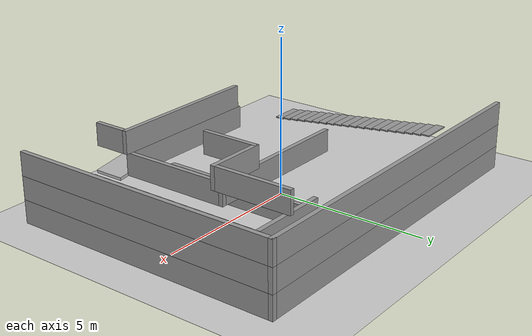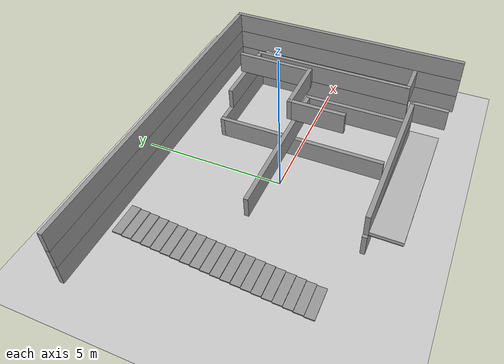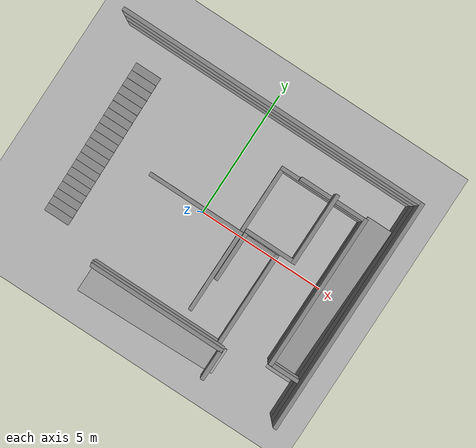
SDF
<sdf version="1.7">
 <world name="default">
  <model name="ground_plane">
   <static>1</static>
   <link name="link">
    <collision name="collision">
     <geometry><plane><normal>0 0 1</normal><size>100 100</size></plane></geometry>
     <surface>
      <contact><collide_bitmask>65535</collide_bitmask></contact>
      <friction><ode><mu>100</mu><mu2>50</mu2></ode></friction>
     </surface>
    </collision>
    <visual name="visual">
     <cast_shadows>0</cast_shadows>
     <geometry><plane><normal>0 0 1</normal><size>100 100</size></plane></geometry>
     <material>
      <script><uri>file://media/materials/scripts/gazebo.material</uri><name>Gazebo/Grey</name></script>
     </material>
    </visual>
   </link>
  </model>
  <model name="building2">
   <pose>0.104983 -0.148677 0 0 -0 0</pose>
   <link name="Stairs_5">
    <visual name="Stairs_5_Visual_0">
     <pose>-4.26414 -2.64856 0.76875 0 -0 -3.14159</pose>
     <geometry><box><size>1 0.3 0.0375</size></box></geometry>
     <material>
      <script><uri>file://media/materials/scripts/gazebo.material</uri><name>Gazebo/Grey</name></script>
      <ambient>1 1 1 1</ambient>
     </material>
     <meta><layer>1</layer></meta>
    </visual>
    <collision name="Stairs_5_Collision_0">
     <geometry><box><size>1 0.3 0.0375</size></box></geometry>
     <pose>-4.26414 -2.64856 0.76875 0 -0 -3.14159</pose>
    </collision>
    <visual name="Stairs_5_Visual_1">
     <pose>-4.26414 -2.34856 0.80625 0 -0 -3.14159</pose>
     <geometry><box><size>1 0.3 0.0375</size></box></geometry>
     <material>
      <script><uri>file://media/materials/scripts/gazebo.material</uri><name>Gazebo/Grey</name></script>
      <ambient>1 1 1 1</ambient>
     </material>
     <meta><layer>1</layer></meta>
    </visual>
    <collision name="Stairs_5_Collision_1">
     <geometry><box><size>1 0.3 0.0375</size></box></geometry>
     <pose>-4.26414 -2.34856 0.80625 0 -0 -3.14159</pose>
    </collision>
    <visual name="Stairs_5_Visual_2">
     <pose>-4.26414 -2.04856 0.84375 0 -0 -3.14159</pose>
     <geometry><box><size>1 0.3 0.0375</size></box></geometry>
     <material>
      <script><uri>file://media/materials/scripts/gazebo.material</uri><name>Gazebo/Grey</name></script>
      <ambient>1 1 1 1</ambient>
     </material>
     <meta><layer>1</layer></meta>
    </visual>
    <collision name="Stairs_5_Collision_2">
     <geometry><box><size>1 0.3 0.0375</size></box></geometry>
     <pose>-4.26414 -2.04856 0.84375 0 -0 -3.14159</pose>
    </collision>
    <visual name="Stairs_5_Visual_3">
     <pose>-4.26414 -1.74856 0.88125 0 -0 -3.14159</pose>
     <geometry><box><size>1 0.3 0.0375</size></box></geometry>
     <material>
      <script><uri>file://media/materials/scripts/gazebo.material</uri><name>Gazebo/Grey</name></script>
      <ambient>1 1 1 1</ambient>
     </material>
     <meta><layer>1</layer></meta>
    </visual>
    <collision name="Stairs_5_Collision_3">
     <geometry><box><size>1 0.3 0.0375</size></box></geometry>
     <pose>-4.26414 -1.74856 0.88125 0 -0 -3.14159</pose>
    </collision>
    <visual name="Stairs_5_Visual_4">
     <pose>-4.26414 -1.44856 0.91875 0 -0 -3.14159</pose>
     <geometry><box><size>1 0.3 0.0375</size></box></geometry>
     <material>
      <script><uri>file://media/materials/scripts/gazebo.material</uri><name>Gazebo/Grey</name></script>
      <ambient>1 1 1 1</ambient>
     </material>
     <meta><layer>1</layer></meta>
    </visual>
    <collision name="Stairs_5_Collision_4">
     <geometry><box><size>1 0.3 0.0375</size></box></geometry>
     <pose>-4.26414 -1.44856 0.91875 0 -0 -3.14159</pose>
    </collision>
    <visual name="Stairs_5_Visual_5">
     <pose>-4.26414 -1.14856 0.95625 0 -0 -3.14159</pose>
     <geometry><box><size>1 0.3 0.0375</size></box></geometry>
     <material>
      <script><uri>file://media/materials/scripts/gazebo.material</uri><name>Gazebo/Grey</name></script>
      <ambient>1 1 1 1</ambient>
     </material>
     <meta><layer>1</layer></meta>
    </visual>
    <collision name="Stairs_5_Collision_5">
     <geometry><box><size>1 0.3 0.0375</size></box></geometry>
     <pose>-4.26414 -1.14856 0.95625 0 -0 -3.14159</pose>
    </collision>
    <visual name="Stairs_5_Visual_6">
     <pose>-4.26414 -0.84856 0.99375 0 -0 -3.14159</pose>
     <geometry><box><size>1 0.3 0.0375</size></box></geometry>
     <material>
      <script><uri>file://media/materials/scripts/gazebo.material</uri><name>Gazebo/Grey</name></script>
      <ambient>1 1 1 1</ambient>
     </material>
     <meta><layer>1</layer></meta>
    </visual>
    <collision name="Stairs_5_Collision_6">
     <geometry><box><size>1 0.3 0.0375</size></box></geometry>
     <pose>-4.26414 -0.84856 0.99375 0 -0 -3.14159</pose>
    </collision>
    <visual name="Stairs_5_Visual_7">
     <pose>-4.26414 -0.548561 1.03125 0 -0 -3.14159</pose>
     <geometry><box><size>1 0.3 0.0375</size></box></geometry>
     <material>
      <script><uri>file://media/materials/scripts/gazebo.material</uri><name>Gazebo/Grey</name></script>
      <ambient>1 1 1 1</ambient>
     </material>
     <meta><layer>1</layer></meta>
    </visual>
    <collision name="Stairs_5_Collision_7">
     <geometry><box><size>1 0.3 0.0375</size></box></geometry>
     <pose>-4.26414 -0.548561 1.03125 0 -0 -3.14159</pose>
    </collision>
    <visual name="Stairs_5_Visual_8">
     <pose>-4.26414 -0.24856 1.06875 0 -0 -3.14159</pose>
     <geometry><box><size>1 0.3 0.0375</size></box></geometry>
     <material>
      <script><uri>file://media/materials/scripts/gazebo.material</uri><name>Gazebo/Grey</name></script>
      <ambient>1 1 1 1</ambient>
     </material>
     <meta><layer>1</layer></meta>
    </visual>
    <collision name="Stairs_5_Collision_8">
     <geometry><box><size>1 0.3 0.0375</size></box></geometry>
     <pose>-4.26414 -0.24856 1.06875 0 -0 -3.14159</pose>
    </collision>
    <visual name="Stairs_5_Visual_9">
     <pose>-4.26414 0.051439 1.10625 0 -0 -3.14159</pose>
     <geometry><box><size>1 0.3 0.0375</size></box></geometry>
     <material>
      <script><uri>file://media/materials/scripts/gazebo.material</uri><name>Gazebo/Grey</name></script>
      <ambient>1 1 1 1</ambient>
     </material>
     <meta><layer>1</layer></meta>
    </visual>
    <collision name="Stairs_5_Collision_9">
     <geometry><box><size>1 0.3 0.0375</size></box></geometry>
     <pose>-4.26414 0.051439 1.10625 0 -0 -3.14159</pose>
    </collision>
    <visual name="Stairs_5_Visual_10">
     <pose>-4.26414 0.351439 1.14375 0 -0 -3.14159</pose>
     <geometry><box><size>1 0.3 0.0375</size></box></geometry>
     <material>
      <script><uri>file://media/materials/scripts/gazebo.material</uri><name>Gazebo/Grey</name></script>
      <ambient>1 1 1 1</ambient>
     </material>
     <meta><layer>1</layer></meta>
    </visual>
    <collision name="Stairs_5_Collision_10">
     <geometry><box><size>1 0.3 0.0375</size></box></geometry>
     <pose>-4.26414 0.351439 1.14375 0 -0 -3.14159</pose>
    </collision>
    <visual name="Stairs_5_Visual_11">
     <pose>-4.26414 0.651439 1.18125 0 -0 -3.14159</pose>
     <geometry><box><size>1 0.3 0.0375</size></box></geometry>
     <material>
      <script><uri>file://media/materials/scripts/gazebo.material</uri><name>Gazebo/Grey</name></script>
      <ambient>1 1 1 1</ambient>
     </material>
     <meta><layer>1</layer></meta>
    </visual>
    <collision name="Stairs_5_Collision_11">
     <geometry><box><size>1 0.3 0.0375</size></box></geometry>
     <pose>-4.26414 0.651439 1.18125 0 -0 -3.14159</pose>
    </collision>
    <visual name="Stairs_5_Visual_12">
     <pose>-4.26414 0.951439 1.21875 0 -0 -3.14159</pose>
     <geometry><box><size>1 0.3 0.0375</size></box></geometry>
     <material>
      <script><uri>file://media/materials/scripts/gazebo.material</uri><name>Gazebo/Grey</name></script>
      <ambient>1 1 1 1</ambient>
     </material>
     <meta><layer>1</layer></meta>
    </visual>
    <collision name="Stairs_5_Collision_12">
     <geometry><box><size>1 0.3 0.0375</size></box></geometry>
     <pose>-4.26414 0.951439 1.21875 0 -0 -3.14159</pose>
    </collision>
    <visual name="Stairs_5_Visual_13">
     <pose>-4.26414 1.25144 1.25625 0 -0 -3.14159</pose>
     <geometry><box><size>1 0.3 0.0375</size></box></geometry>
     <material>
      <script><uri>file://media/materials/scripts/gazebo.material</uri><name>Gazebo/Grey</name></script>
      <ambient>1 1 1 1</ambient>
     </material>
     <meta><layer>1</layer></meta>
    </visual>
    <collision name="Stairs_5_Collision_13">
     <geometry><box><size>1 0.3 0.0375</size></box></geometry>
     <pose>-4.26414 1.25144 1.25625 0 -0 -3.14159</pose>
    </collision>
    <visual name="Stairs_5_Visual_14">
     <pose>-4.26414 1.55144 1.29375 0 -0 -3.14159</pose>
     <geometry><box><size>1 0.3 0.0375</size></box></geometry>
     <material>
      <script><uri>file://media/materials/scripts/gazebo.material</uri><name>Gazebo/Grey</name></script>
      <ambient>1 1 1 1</ambient>
     </material>
     <meta><layer>1</layer></meta>
    </visual>
    <collision name="Stairs_5_Collision_14">
     <geometry><box><size>1 0.3 0.0375</size></box></geometry>
     <pose>-4.26414 1.55144 1.29375 0 -0 -3.14159</pose>
    </collision>
    <visual name="Stairs_5_Visual_15">
     <pose>-4.26414 1.85144 1.33125 0 -0 -3.14159</pose>
     <geometry><box><size>1 0.3 0.0375</size></box></geometry>
     <material>
      <script><uri>file://media/materials/scripts/gazebo.material</uri><name>Gazebo/Grey</name></script>
      <ambient>1 1 1 1</ambient>
     </material>
     <meta><layer>1</layer></meta>
    </visual>
    <collision name="Stairs_5_Collision_15">
     <geometry><box><size>1 0.3 0.0375</size></box></geometry>
     <pose>-4.26414 1.85144 1.33125 0 -0 -3.14159</pose>
    </collision>
    <visual name="Stairs_5_Visual_16">
     <pose>-4.26414 2.15144 1.36875 0 -0 -3.14159</pose>
     <geometry><box><size>1 0.3 0.0375</size></box></geometry>
     <material>
      <script><uri>file://media/materials/scripts/gazebo.material</uri><name>Gazebo/Grey</name></script>
      <ambient>1 1 1 1</ambient>
     </material>
     <meta><layer>1</layer></meta>
    </visual>
    <collision name="Stairs_5_Collision_16">
     <geometry><box><size>1 0.3 0.0375</size></box></geometry>
     <pose>-4.26414 2.15144 1.36875 0 -0 -3.14159</pose>
    </collision>
    <visual name="Stairs_5_Visual_17">
     <pose>-4.26414 2.45144 1.40625 0 -0 -3.14159</pose>
     <geometry><box><size>1 0.3 0.0375</size></box></geometry>
     <material>
      <script><uri>file://media/materials/scripts/gazebo.material</uri><name>Gazebo/Grey</name></script>
      <ambient>1 1 1 1</ambient>
     </material>
     <meta><layer>1</layer></meta>
    </visual>
    <collision name="Stairs_5_Collision_17">
     <geometry><box><size>1 0.3 0.0375</size></box></geometry>
     <pose>-4.26414 2.45144 1.40625 0 -0 -3.14159</pose>
    </collision>
    <visual name="Stairs_5_Visual_18">
     <pose>-4.26414 2.75144 1.44375 0 -0 -3.14159</pose>
     <geometry><box><size>1 0.3 0.0375</size></box></geometry>
     <material>
      <script><uri>file://media/materials/scripts/gazebo.material</uri><name>Gazebo/Grey</name></script>
      <ambient>1 1 1 1</ambient>
     </material>
     <meta><layer>1</layer></meta>
    </visual>
    <collision name="Stairs_5_Collision_18">
     <geometry><box><size>1 0.3 0.0375</size></box></geometry>
     <pose>-4.26414 2.75144 1.44375 0 -0 -3.14159</pose>
    </collision>
    <visual name="Stairs_5_Visual_19">
     <pose>-4.26414 3.05144 1.48125 0 -0 -3.14159</pose>
     <geometry><box><size>1 0.3 0.0375</size></box></geometry>
     <material>
      <script><uri>file://media/materials/scripts/gazebo.material</uri><name>Gazebo/Grey</name></script>
      <ambient>1 1 1 1</ambient>
     </material>
     <meta><layer>1</layer></meta>
    </visual>
    <collision name="Stairs_5_Collision_19">
     <geometry><box><size>1 0.3 0.0375</size></box></geometry>
     <pose>-4.26414 3.05144 1.48125 0 -0 -3.14159</pose>
    </collision>
   </link>
   <link name="Stairs_6">
    <visual name="Stairs_6_Visual_0">
     <pose>2.66989 -3.87409 0.775 0 -0 -1.5708</pose>
     <geometry><box><size>1 0.333333 0.05</size></box></geometry>
     <material>
      <script><uri>file://media/materials/scripts/gazebo.material</uri><name>Gazebo/Grey</name></script>
      <ambient>1 1 1 1</ambient>
     </material>
     <meta><layer>1</layer></meta>
    </visual>
    <collision name="Stairs_6_Collision_0">
     <geometry><box><size>1 0.333333 0.05</size></box></geometry>
     <pose>2.66989 -3.87409 0.775 0 -0 -1.5708</pose>
    </collision>
    <visual name="Stairs_6_Visual_1">
     <pose>2.33656 -3.87409 0.825 0 -0 -1.5708</pose>
     <geometry><box><size>1 0.333333 0.05</size></box></geometry>
     <material>
      <script><uri>file://media/materials/scripts/gazebo.material</uri><name>Gazebo/Grey</name></script>
      <ambient>1 1 1 1</ambient>
     </material>
     <meta><layer>1</layer></meta>
    </visual>
    <collision name="Stairs_6_Collision_1">
     <geometry><box><size>1 0.333333 0.05</size></box></geometry>
     <pose>2.33656 -3.87409 0.825 0 -0 -1.5708</pose>
    </collision>
    <visual name="Stairs_6_Visual_2">
     <pose>2.00323 -3.87409 0.875 0 -0 -1.5708</pose>
     <geometry><box><size>1 0.333333 0.05</size></box></geometry>
     <material>
      <script><uri>file://media/materials/scripts/gazebo.material</uri><name>Gazebo/Grey</name></script>
      <ambient>1 1 1 1</ambient>
     </material>
     <meta><layer>1</layer></meta>
    </visual>
    <collision name="Stairs_6_Collision_2">
     <geometry><box><size>1 0.333333 0.05</size></box></geometry>
     <pose>2.00323 -3.87409 0.875 0 -0 -1.5708</pose>
    </collision>
    <visual name="Stairs_6_Visual_3">
     <pose>1.66989 -3.87409 0.925 0 -0 -1.5708</pose>
     <geometry><box><size>1 0.333333 0.05</size></box></geometry>
     <material>
      <script><uri>file://media/materials/scripts/gazebo.material</uri><name>Gazebo/Grey</name></script>
      <ambient>1 1 1 1</ambient>
     </material>
     <meta><layer>1</layer></meta>
    </visual>
    <collision name="Stairs_6_Collision_3">
     <geometry><box><size>1 0.333333 0.05</size></box></geometry>
     <pose>1.66989 -3.87409 0.925 0 -0 -1.5708</pose>
    </collision>
    <visual name="Stairs_6_Visual_4">
     <pose>1.33656 -3.87409 0.975 0 -0 -1.5708</pose>
     <geometry><box><size>1 0.333333 0.05</size></box></geometry>
     <material>
      <script><uri>file://media/materials/scripts/gazebo.material</uri><name>Gazebo/Grey</name></script>
      <ambient>1 1 1 1</ambient>
     </material>
     <meta><layer>1</layer></meta>
    </visual>
    <collision name="Stairs_6_Collision_4">
     <geometry><box><size>1 0.333333 0.05</size></box></geometry>
     <pose>1.33656 -3.87409 0.975 0 -0 -1.5708</pose>
    </collision>
    <visual name="Stairs_6_Visual_5">
     <pose>1.00323 -3.87409 1.025 0 -0 -1.5708</pose>
     <geometry><box><size>1 0.333333 0.05</size></box></geometry>
     <material>
      <script><uri>file://media/materials/scripts/gazebo.material</uri><name>Gazebo/Grey</name></script>
      <ambient>1 1 1 1</ambient>
     </material>
     <meta><layer>1</layer></meta>
    </visual>
    <collision name="Stairs_6_Collision_5">
     <geometry><box><size>1 0.333333 0.05</size></box></geometry>
     <pose>1.00323 -3.87409 1.025 0 -0 -1.5708</pose>
    </collision>
    <visual name="Stairs_6_Visual_6">
     <pose>0.669893 -3.87409 1.075 0 -0 -1.5708</pose>
     <geometry><box><size>1 0.333333 0.05</size></box></geometry>
     <material>
      <script><uri>file://media/materials/scripts/gazebo.material</uri><name>Gazebo/Grey</name></script>
      <ambient>1 1 1 1</ambient>
     </material>
     <meta><layer>1</layer></meta>
    </visual>
    <collision name="Stairs_6_Collision_6">
     <geometry><box><size>1 0.333333 0.05</size></box></geometry>
     <pose>0.669893 -3.87409 1.075 0 -0 -1.5708</pose>
    </collision>
    <visual name="Stairs_6_Visual_7">
     <pose>0.33656 -3.87409 1.125 0 -0 -1.5708</pose>
     <geometry><box><size>1 0.333333 0.05</size></box></geometry>
     <material>
      <script><uri>file://media/materials/scripts/gazebo.material</uri><name>Gazebo/Grey</name></script>
      <ambient>1 1 1 1</ambient>
     </material>
     <meta><layer>1</layer></meta>
    </visual>
    <collision name="Stairs_6_Collision_7">
     <geometry><box><size>1 0.333333 0.05</size></box></geometry>
     <pose>0.33656 -3.87409 1.125 0 -0 -1.5708</pose>
    </collision>
    <visual name="Stairs_6_Visual_8">
     <pose>0.003226 -3.87409 1.175 0 -0 -1.5708</pose>
     <geometry><box><size>1 0.333333 0.05</size></box></geometry>
     <material>
      <script><uri>file://media/materials/scripts/gazebo.material</uri><name>Gazebo/Grey</name></script>
      <ambient>1 1 1 1</ambient>
     </material>
     <meta><layer>1</layer></meta>
    </visual>
    <collision name="Stairs_6_Collision_8">
     <geometry><box><size>1 0.333333 0.05</size></box></geometry>
     <pose>0.003226 -3.87409 1.175 0 -0 -1.5708</pose>
    </collision>
    <visual name="Stairs_6_Visual_9">
     <pose>-0.330107 -3.87409 1.225 0 -0 -1.5708</pose>
     <geometry><box><size>1 0.333333 0.05</size></box></geometry>
     <material>
      <script><uri>file://media/materials/scripts/gazebo.material</uri><name>Gazebo/Grey</name></script>
      <ambient>1 1 1 1</ambient>
     </material>
     <meta><layer>1</layer></meta>
    </visual>
    <collision name="Stairs_6_Collision_9">
     <geometry><box><size>1 0.333333 0.05</size></box></geometry>
     <pose>-0.330107 -3.87409 1.225 0 -0 -1.5708</pose>
    </collision>
    <visual name="Stairs_6_Visual_10">
     <pose>-0.66344 -3.87409 1.275 0 -0 -1.5708</pose>
     <geometry><box><size>1 0.333333 0.05</size></box></geometry>
     <material>
      <script><uri>file://media/materials/scripts/gazebo.material</uri><name>Gazebo/Grey</name></script>
      <ambient>1 1 1 1</ambient>
     </material>
     <meta><layer>1</layer></meta>
    </visual>
    <collision name="Stairs_6_Collision_10">
     <geometry><box><size>1 0.333333 0.05</size></box></geometry>
     <pose>-0.66344 -3.87409 1.275 0 -0 -1.5708</pose>
    </collision>
    <visual name="Stairs_6_Visual_11">
     <pose>-0.996774 -3.87409 1.325 0 -0 -1.5708</pose>
     <geometry><box><size>1 0.333333 0.05</size></box></geometry>
     <material>
      <script><uri>file://media/materials/scripts/gazebo.material</uri><name>Gazebo/Grey</name></script>
      <ambient>1 1 1 1</ambient>
     </material>
     <meta><layer>1</layer></meta>
    </visual>
    <collision name="Stairs_6_Collision_11">
     <geometry><box><size>1 0.333333 0.05</size></box></geometry>
     <pose>-0.996774 -3.87409 1.325 0 -0 -1.5708</pose>
    </collision>
    <visual name="Stairs_6_Visual_12">
     <pose>-1.33011 -3.87409 1.375 0 -0 -1.5708</pose>
     <geometry><box><size>1 0.333333 0.05</size></box></geometry>
     <material>
      <script><uri>file://media/materials/scripts/gazebo.material</uri><name>Gazebo/Grey</name></script>
      <ambient>1 1 1 1</ambient>
     </material>
     <meta><layer>1</layer></meta>
    </visual>
    <collision name="Stairs_6_Collision_12">
     <geometry><box><size>1 0.333333 0.05</size></box></geometry>
     <pose>-1.33011 -3.87409 1.375 0 -0 -1.5708</pose>
    </collision>
    <visual name="Stairs_6_Visual_13">
     <pose>-1.66344 -3.87409 1.425 0 -0 -1.5708</pose>
     <geometry><box><size>1 0.333333 0.05</size></box></geometry>
     <material>
      <script><uri>file://media/materials/scripts/gazebo.material</uri><name>Gazebo/Grey</name></script>
      <ambient>1 1 1 1</ambient>
     </material>
     <meta><layer>1</layer></meta>
    </visual>
    <collision name="Stairs_6_Collision_13">
     <geometry><box><size>1 0.333333 0.05</size></box></geometry>
     <pose>-1.66344 -3.87409 1.425 0 -0 -1.5708</pose>
    </collision>
    <visual name="Stairs_6_Visual_14">
     <pose>-1.99677 -3.87409 1.475 0 -0 -1.5708</pose>
     <geometry><box><size>1 0.333333 0.05</size></box></geometry>
     <material>
      <script><uri>file://media/materials/scripts/gazebo.material</uri><name>Gazebo/Grey</name></script>
      <ambient>1 1 1 1</ambient>
     </material>
     <meta><layer>1</layer></meta>
    </visual>
    <collision name="Stairs_6_Collision_14">
     <geometry><box><size>1 0.333333 0.05</size></box></geometry>
     <pose>-1.99677 -3.87409 1.475 0 -0 -1.5708</pose>
    </collision>
   </link>
   <link name="Wall_13">
    <collision name="Wall_13_Collision">
     <geometry><box><size>3.5 0.15 0.75</size></box></geometry>
     <pose>0 0 0.375 0 -0 0</pose>
    </collision>
    <visual name="Wall_13_Visual">
     <pose>0 0 0.375 0 -0 0</pose>
     <geometry><box><size>3.5 0.15 0.75</size></box></geometry>
     <material>
      <script><uri>file://media/materials/scripts/gazebo.material</uri><name>Gazebo/Grey</name></script>
      <ambient>1 1 1 1</ambient>
     </material>
     <meta><layer>0</layer></meta>
    </visual>
    <pose>3.09543 2.98201 0 0 -0 3.14159</pose>
   </link>
   <link name="Wall_14">
    <collision name="Wall_14_Collision">
     <geometry><box><size>6 0.15 0.75</size></box></geometry>
     <pose>0 0 0.375 0 -0 0</pose>
    </collision>
    <visual name="Wall_14_Visual">
     <pose>0 0 0.375 0 -0 0</pose>
     <geometry><box><size>6 0.15 0.75</size></box></geometry>
     <material>
      <script><uri>file://media/materials/scripts/gazebo.material</uri><name>Gazebo/Grey</name></script>
      <ambient>1 1 1 1</ambient>
     </material>
     <meta><layer>0</layer></meta>
    </visual>
    <pose>1.42043 0.057005 0 0 -0 -1.5708</pose>
   </link>
   <link name="Wall_18">
    <collision name="Wall_18_Collision">
     <geometry><box><size>9 0.15 0.75</size></box></geometry>
     <pose>0 0 0.375 0 -0 0</pose>
    </collision>
    <visual name="Wall_18_Visual">
     <pose>0 0 0.375 0 -0 0</pose>
     <geometry><box><size>9 0.15 0.75</size></box></geometry>
     <material>
      <script><uri>file://media/materials/scripts/gazebo.material</uri><name>Gazebo/Grey</name></script>
      <ambient>1 1 1 1</ambient>
     </material>
     <meta><layer>1</layer></meta>
    </visual>
    <pose>5.91643 -0.025995 0.75 0 -0 1.5708</pose>
   </link>
   <link name="Wall_19">
    <collision name="Wall_19_Collision">
     <geometry><box><size>11.982 0.15 0.75</size></box></geometry>
     <pose>0 0 0.375 0 -0 0</pose>
    </collision>
    <visual name="Wall_19_Visual">
     <pose>0 0 0.375 0 -0 0</pose>
     <geometry><box><size>11.982 0.15 0.75</size></box></geometry>
     <material>
      <script><uri>file://media/materials/scripts/gazebo.material</uri><name>Gazebo/Grey</name></script>
      <ambient>1 1 1 1</ambient>
     </material>
     <meta><layer>1</layer></meta>
    </visual>
    <pose>0.000427 4.399 0.75 0 -0 3.14159</pose>
   </link>
   <link name="Wall_2">
    <collision name="Wall_2_Collision">
     <geometry><box><size>9 0.15 0.75</size></box></geometry>
     <pose>0 0 0.375 0 -0 0</pose>
    </collision>
    <visual name="Wall_2_Visual">
     <pose>0 0 0.375 0 -0 0</pose>
     <geometry><box><size>9 0.15 0.75</size></box></geometry>
     <material>
      <script><uri>file://media/materials/scripts/gazebo.material</uri><name>Gazebo/Grey</name></script>
      <ambient>1 1 1 1</ambient>
     </material>
     <meta><layer>0</layer></meta>
    </visual>
    <pose>5.91643 -0.025995 0 0 -0 1.5708</pose>
   </link>
   <link name="Wall_21">
    <collision name="Wall_21_Collision">
     <geometry><box><size>6 0.15 0.75</size></box></geometry>
     <pose>0 0 0.375 0 -0 0</pose>
    </collision>
    <visual name="Wall_21_Visual">
     <pose>0 0 0.375 0 -0 0</pose>
     <geometry><box><size>6 0.15 0.75</size></box></geometry>
     <material>
      <script><uri>file://media/materials/scripts/gazebo.material</uri><name>Gazebo/Grey</name></script>
      <ambient>1 1 1 1</ambient>
     </material>
     <meta><layer>1</layer></meta>
    </visual>
    <pose>4.73543 0.057005 0.75 0 -0 -1.5708</pose>
   </link>
   <link name="Wall_29">
    <collision name="Wall_29_Collision">
     <geometry><box><size>1.285 0.15 0.75</size></box></geometry>
     <pose>0 0 0.375 0 -0 0</pose>
    </collision>
    <visual name="Wall_29_Visual">
     <pose>0 0 0.375 0 -0 0</pose>
     <geometry><box><size>1.285 0.15 0.75</size></box></geometry>
     <material>
      <script><uri>file://media/materials/scripts/gazebo.material</uri><name>Gazebo/Grey</name></script>
      <ambient>1 1 1 1</ambient>
     </material>
     <meta><layer>1</layer></meta>
    </visual>
    <pose>5.30293 -2.868 0.75 0 -0 0</pose>
   </link>
   <link name="Wall_3">
    <collision name="Wall_3_Collision">
     <geometry><box><size>11.9823 0.15 0.75</size></box></geometry>
     <pose>0 0 0.375 0 -0 0</pose>
    </collision>
    <visual name="Wall_3_Visual">
     <pose>0 0 0.375 0 -0 0</pose>
     <geometry><box><size>11.9823 0.15 0.75</size></box></geometry>
     <material>
      <script><uri>file://media/materials/scripts/gazebo.material</uri><name>Gazebo/Grey</name></script>
      <ambient>1 1 1 1</ambient>
     </material>
     <meta><layer>0</layer></meta>
    </visual>
    <pose>0.000427 4.399 0 0 -0 3.14159</pose>
   </link>
   <link name="Wall_33">
    <collision name="Wall_33_Collision">
     <geometry><box><size>5.25 0.15 0.75</size></box></geometry>
     <pose>0 0 0.375 0 -0 0</pose>
    </collision>
    <visual name="Wall_33_Visual">
     <pose>0 0 0.375 0 -0 0</pose>
     <geometry><box><size>5.25 0.15 0.75</size></box></geometry>
     <material>
      <script><uri>file://media/materials/scripts/gazebo.material</uri><name>Gazebo/Grey</name></script>
      <ambient>1 1 1 1</ambient>
     </material>
     <meta><layer>1</layer></meta>
    </visual>
    <pose>0.314427 -3.31399 0.75 0 -0 3.14159</pose>
   </link>
   <link name="Wall_38">
    <collision name="Wall_38_Collision">
     <geometry><box><size>2.715 0.15 0.75</size></box></geometry>
     <pose>0 0 0.375 0 -0 0</pose>
    </collision>
    <visual name="Wall_38_Visual">
     <pose>0 0 0.375 0 -0 0</pose>
     <geometry><box><size>2.715 0.15 0.75</size></box></geometry>
     <material>
      <script><uri>file://media/materials/scripts/gazebo.material</uri><name>Gazebo/Grey</name></script>
      <ambient>1 1 1 1</ambient>
     </material>
     <meta><layer>1</layer></meta>
    </visual>
    <pose>3.45293 2.98201 0.75 0 -0 3.14159</pose>
   </link>
   <link name="Wall_40">
    <collision name="Wall_40_Collision">
     <geometry><box><size>3.75 0.15 0.75</size></box></geometry>
     <pose>0 0 0.375 0 -0 0</pose>
    </collision>
    <visual name="Wall_40_Visual">
     <pose>0 0 0.375 0 -0 0</pose>
     <geometry><box><size>3.75 0.15 0.75</size></box></geometry>
     <material>
      <script><uri>file://media/materials/scripts/gazebo.material</uri><name>Gazebo/Grey</name></script>
      <ambient>1 1 1 1</ambient>
     </material>
     <meta><layer>1</layer></meta>
    </visual>
    <pose>2.86443 -1.51399 0.75 0 -0 1.5708</pose>
   </link>
   <link name="Wall_42">
    <collision name="Wall_42_Collision">
     <geometry><box><size>5.25 0.15 0.75</size></box></geometry>
     <pose>0 0 0.375 0 -0 0</pose>
    </collision>
    <visual name="Wall_42_Visual">
     <pose>0 0 0.375 0 -0 0</pose>
     <geometry><box><size>5.25 0.15 0.75</size></box></geometry>
     <material>
      <script><uri>file://media/materials/scripts/gazebo.material</uri><name>Gazebo/Grey</name></script>
      <ambient>1 1 1 1</ambient>
     </material>
     <meta><layer>1</layer></meta>
    </visual>
    <pose>0.314427 0.286005 0.75 0 -0 3.14159</pose>
   </link>
   <link name="Wall_47">
    <collision name="Wall_47_Collision">
     <geometry><box><size>9 0.15 0.75</size></box></geometry>
     <pose>0 0 0.375 0 -0 0</pose>
    </collision>
    <visual name="Wall_47_Visual">
     <pose>0 0 0.375 0 -0 0</pose>
     <geometry><box><size>9 0.15 0.75</size></box></geometry>
     <material>
      <script><uri>file://media/materials/scripts/gazebo.material</uri><name>Gazebo/Grey</name></script>
      <ambient>1 1 1 1</ambient>
     </material>
     <meta><layer>2</layer></meta>
    </visual>
    <pose>5.91643 -0.025995 1.5 0 -0 1.5708</pose>
   </link>
   <link name="Wall_48">
    <collision name="Wall_48_Collision">
     <geometry><box><size>11.982 0.15 0.75</size></box></geometry>
     <pose>0 0 0.375 0 -0 0</pose>
    </collision>
    <visual name="Wall_48_Visual">
     <pose>0 0 0.375 0 -0 0</pose>
     <geometry><box><size>11.982 0.15 0.75</size></box></geometry>
     <material>
      <script><uri>file://media/materials/scripts/gazebo.material</uri><name>Gazebo/Grey</name></script>
      <ambient>1 1 1 1</ambient>
     </material>
     <meta><layer>2</layer></meta>
    </visual>
    <pose>0.000427 4.399 1.5 0 -0 3.14159</pose>
   </link>
   <link name="Wall_54">
    <collision name="Wall_54_Collision">
     <geometry><box><size>5.2766 0.15 0.75</size></box></geometry>
     <pose>0 0 0.375 0 -0 0</pose>
    </collision>
    <visual name="Wall_54_Visual">
     <pose>0 0 0.375 0 -0 0</pose>
     <geometry><box><size>5.2766 0.15 0.75</size></box></geometry>
     <material>
      <script><uri>file://media/materials/scripts/gazebo.material</uri><name>Gazebo/Grey</name></script>
      <ambient>1 1 1 1</ambient>
     </material>
     <meta><layer>2</layer></meta>
    </visual>
    <pose>0.430643 -3.31399 1.5 0 -0 3.14159</pose>
   </link>
   <link name="Wall_66">
    <collision name="Wall_66_Collision">
     <geometry><box><size>2.75 0.15 0.75</size></box></geometry>
     <pose>0 0 0.375 0 -0 0</pose>
    </collision>
    <visual name="Wall_66_Visual">
     <pose>0 0 0.375 0 -0 0</pose>
     <geometry><box><size>2.75 0.15 0.75</size></box></geometry>
     <material>
      <script><uri>file://media/materials/scripts/gazebo.material</uri><name>Gazebo/Grey</name></script>
      <ambient>1 1 1 1</ambient>
     </material>
     <meta><layer>2</layer></meta>
    </visual>
    <pose>3.40543 1.769 1.5 0 -0 -1.5708</pose>
   </link>
   <link name="Wall_67">
    <collision name="Wall_67_Collision">
     <geometry><box><size>2 0.15 0.75</size></box></geometry>
     <pose>0 0 0.375 0 -0 0</pose>
    </collision>
    <visual name="Wall_67_Visual">
     <pose>0 0 0.375 0 -0 0</pose>
     <geometry><box><size>2 0.15 0.75</size></box></geometry>
     <material>
      <script><uri>file://media/materials/scripts/gazebo.material</uri><name>Gazebo/Grey</name></script>
      <ambient>1 1 1 1</ambient>
     </material>
     <meta><layer>2</layer></meta>
    </visual>
    <pose>2.48043 0.469005 1.5 0 -0 3.14159</pose>
   </link>
   <link name="Wall_68">
    <collision name="Wall_68_Collision">
     <geometry><box><size>2 0.15 0.75</size></box></geometry>
     <pose>0 0 0.375 0 -0 0</pose>
    </collision>
    <visual name="Wall_68_Visual">
     <pose>0 0 0.375 0 -0 0</pose>
     <geometry><box><size>2 0.15 0.75</size></box></geometry>
     <material>
      <script><uri>file://media/materials/scripts/gazebo.material</uri><name>Gazebo/Grey</name></script>
      <ambient>1 1 1 1</ambient>
     </material>
     <meta><layer>2</layer></meta>
    </visual>
    <pose>1.55543 -0.455995 1.5 0 -0 -1.5708</pose>
   </link>
   <link name="Wall_7">
    <collision name="Wall_7_Collision">
     <geometry><box><size>6 0.15 0.75</size></box></geometry>
     <pose>0 0 0.375 0 -0 0</pose>
    </collision>
    <visual name="Wall_7_Visual">
     <pose>0 0 0.375 0 -0 0</pose>
     <geometry><box><size>6 0.15 0.75</size></box></geometry>
     <material>
      <script><uri>file://media/materials/scripts/gazebo.material</uri><name>Gazebo/Grey</name></script>
      <ambient>1 1 1 1</ambient>
     </material>
     <meta><layer>0</layer></meta>
    </visual>
    <pose>4.77043 0.057005 0 0 -0 -1.5708</pose>
   </link>
   <link name="Wall_71">
    <collision name="Wall_71_Collision">
     <geometry><box><size>1.25 0.15 0.75</size></box></geometry>
     <pose>0 0 0.375 0 -0 0</pose>
    </collision>
    <visual name="Wall_71_Visual">
     <pose>0 0 0.375 0 -0 0</pose>
     <geometry><box><size>1.25 0.15 0.75</size></box></geometry>
     <material>
      <script><uri>file://media/materials/scripts/gazebo.material</uri><name>Gazebo/Grey</name></script>
      <ambient>1 1 1 1</ambient>
     </material>
     <meta><layer>2</layer></meta>
    </visual>
    <pose>2.99394 -3.864 1.5 0 -0 -1.5708</pose>
   </link>
   <static>1</static>
  </model>
  <model name="slope_clone">
   <static>1</static>
   <pose>0.646481 -4.02506 1.14019 0 0.149022 0</pose>
   <link name="link">
    <collision name="collision"><geometry><box><size>5.5 1 0.1</size></box></geometry></collision>
    <visual name="visual"><geometry><box><size>5.5 1 0.1</size></box></geometry></visual>
   </link>
  </model>
  <model name="slope_clone_0">
   <static>1</static>
   <pose>5.41558 -0.160802 0.368928 0 -0.132978 1.5708</pose>
   <link name="link">
    <collision name="collision"><geometry><box><size>6.5 1 0.1</size></box></geometry></collision>
    <visual name="visual"><geometry><box><size>6.5 1 0.1</size></box></geometry></visual>
   </link>
  </model>
 </world>
</sdf>
